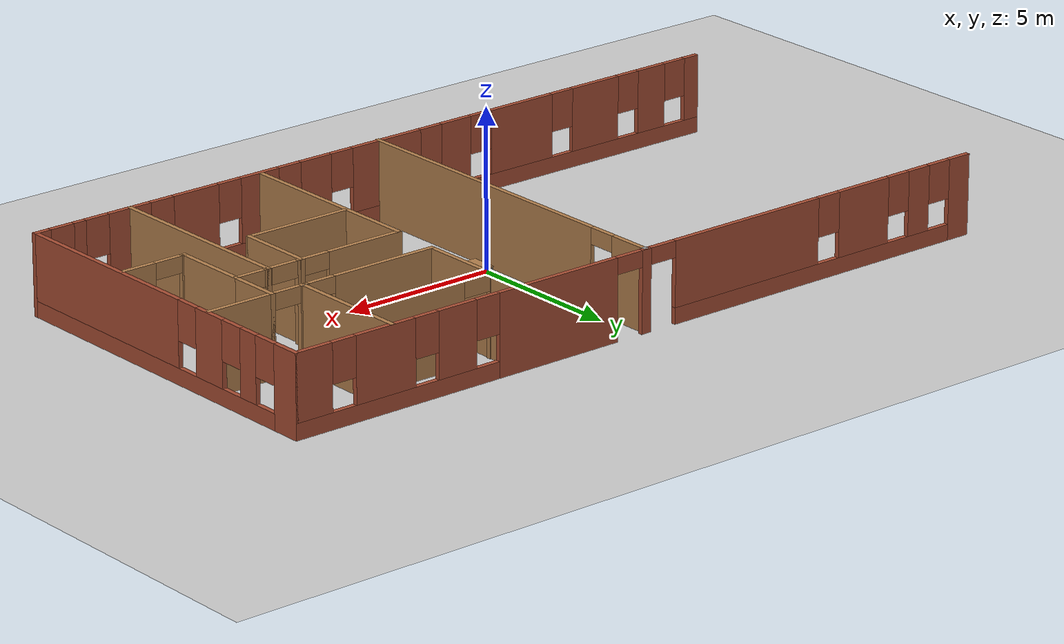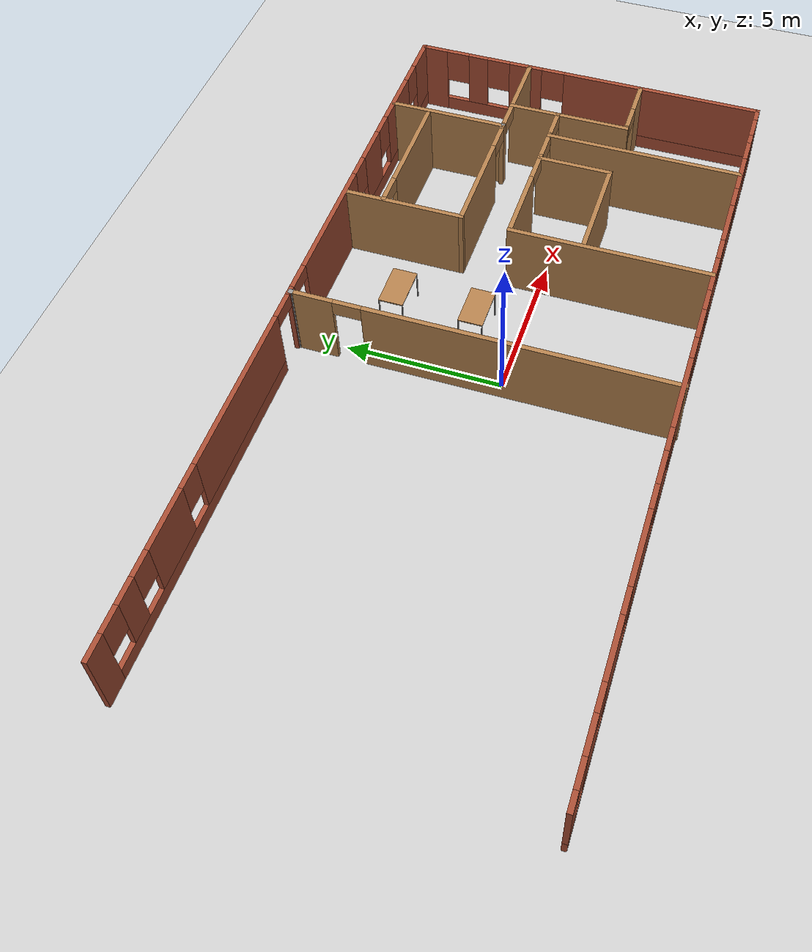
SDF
<sdf version="1.6">
 <world name="default">
  <model name="ground_plane">
   <static>1</static>
   <link name="link">
    <collision name="collision">
     <geometry><plane><normal>0 0 1</normal><size>100 100</size></plane></geometry>
     <surface><friction><ode><mu>100</mu><mu2>50</mu2></ode></friction></surface>
    </collision>
    <visual name="visual">
     <cast_shadows>0</cast_shadows>
     <geometry><plane><normal>0 0 1</normal><size>100 100</size></plane></geometry>
     <material>
      <script><uri>file://media/materials/scripts/gazebo.material</uri><name>Gazebo/Grey</name></script>
     </material>
    </visual>
   </link>
  </model>
  <model name="myhouse">
   <pose>-0.386417 0.578117 0 0 -0 0</pose>
   <link name="Wall_14">
    <collision name="Wall_14_Collision">
     <geometry><box><size>0.16 0.15 2.5</size></box></geometry>
     <pose>0 0 1.25 0 -0 0</pose>
    </collision>
    <visual name="Wall_14_Visual">
     <pose>0 0 1.25 0 -0 0</pose>
     <geometry><box><size>0.16 0.15 2.5</size></box></geometry>
     <material>
      <script><uri>file://media/materials/scripts/gazebo.material</uri><name>Gazebo/Grey</name></script>
      <ambient>1 1 1 1</ambient>
     </material>
    </visual>
    <pose>0.03462 5.87902 0 0 -0 0</pose>
   </link>
   <link name="Wall_15">
    <pose>0.03962 -0.045979 0 0 0 -1.5708</pose>
    <visual name="Wall_15_Visual_0">
     <pose>-5.3025 0 1.25 0 -0 0</pose>
     <geometry><box><size>1.39499 0.15 2.5</size></box></geometry>
     <material>
      <script><uri>file://media/materials/scripts/gazebo.material</uri><name>Gazebo/Wood</name></script>
      <ambient>1 1 1 1</ambient>
     </material>
    </visual>
    <collision name="Wall_15_Collision_0">
     <geometry><box><size>1.39499 0.15 2.5</size></box></geometry>
     <pose>-5.3025 0 1.25 0 -0 0</pose>
    </collision>
    <visual name="Wall_15_Visual_1">
     <pose>1.1475 0 1.25 0 -0 0</pose>
     <geometry><box><size>9.70501 0.15 2.5</size></box></geometry>
     <material>
      <script><uri>file://media/materials/scripts/gazebo.material</uri><name>Gazebo/Wood</name></script>
      <ambient>1 1 1 1</ambient>
     </material>
    </visual>
    <collision name="Wall_15_Collision_1">
     <geometry><box><size>9.70501 0.15 2.5</size></box></geometry>
     <pose>1.1475 0 1.25 0 -0 0</pose>
    </collision>
    <visual name="Wall_15_Visual_2">
     <pose>-4.15501 0 2.25 0 -0 0</pose>
     <geometry><box><size>0.9 0.15 0.5</size></box></geometry>
     <material>
      <script><uri>file://media/materials/scripts/gazebo.material</uri><name>Gazebo/Wood</name></script>
      <ambient>1 1 1 1</ambient>
     </material>
    </visual>
    <collision name="Wall_15_Collision_2">
     <geometry><box><size>0.9 0.15 0.5</size></box></geometry>
     <pose>-4.15501 0 2.25 0 -0 0</pose>
    </collision>
   </link>
   <link name="Wall_17">
    <collision name="Wall_17_Collision">
     <geometry><box><size>6.5 0.15 2.5</size></box></geometry>
     <pose>0 0 1.25 0 -0 0</pose>
    </collision>
    <visual name="Wall_17_Visual">
     <pose>0 0 1.25 0 -0 0</pose>
     <geometry><box><size>6.5 0.15 2.5</size></box></geometry>
     <material>
      <script><uri>file://media/materials/scripts/gazebo.material</uri><name>Gazebo/Wood</name></script>
      <ambient>1 1 1 1</ambient>
     </material>
    </visual>
    <pose>4.43449 -2.73253 0 0 -0 1.5708</pose>
   </link>
   <link name="Wall_18">
    <pose>6.73449 0.442468 0 0 -0 0</pose>
    <visual name="Wall_18_Visual_0">
     <pose>-1.08415 0 1.25 0 -0 0</pose>
     <geometry><box><size>2.58169 0.15 2.5</size></box></geometry>
     <material>
      <script><uri>file://media/materials/scripts/gazebo.material</uri><name>Gazebo/Wood</name></script>
      <ambient>1 1 1 1</ambient>
     </material>
    </visual>
    <collision name="Wall_18_Collision_0">
     <geometry><box><size>2.58169 0.15 2.5</size></box></geometry>
     <pose>-1.08415 0 1.25 0 -0 0</pose>
    </collision>
    <visual name="Wall_18_Visual_1">
     <pose>1.20982 0 1.25 0 -0 0</pose>
     <geometry><box><size>0.206246 0.15 2.5</size></box></geometry>
     <material>
      <script><uri>file://media/materials/scripts/gazebo.material</uri><name>Gazebo/Wood</name></script>
      <ambient>1 1 1 1</ambient>
     </material>
    </visual>
    <collision name="Wall_18_Collision_1">
     <geometry><box><size>0.206246 0.15 2.5</size></box></geometry>
     <pose>1.20982 0 1.25 0 -0 0</pose>
    </collision>
    <visual name="Wall_18_Visual_2">
     <pose>2.29397 0 1.25 0 -0 0</pose>
     <geometry><box><size>0.162059 0.15 2.5</size></box></geometry>
     <material>
      <script><uri>file://media/materials/scripts/gazebo.material</uri><name>Gazebo/Wood</name></script>
      <ambient>1 1 1 1</ambient>
     </material>
    </visual>
    <collision name="Wall_18_Collision_2">
     <geometry><box><size>0.162059 0.15 2.5</size></box></geometry>
     <pose>2.29397 0 1.25 0 -0 0</pose>
    </collision>
    <visual name="Wall_18_Visual_3">
     <pose>0.656695 0 2.25 0 -0 0</pose>
     <geometry><box><size>0.9 0.15 0.5</size></box></geometry>
     <material>
      <script><uri>file://media/materials/scripts/gazebo.material</uri><name>Gazebo/Wood</name></script>
      <ambient>1 1 1 1</ambient>
     </material>
    </visual>
    <collision name="Wall_18_Collision_3">
     <geometry><box><size>0.9 0.15 0.5</size></box></geometry>
     <pose>0.656695 0 2.25 0 -0 0</pose>
    </collision>
    <visual name="Wall_18_Visual_4">
     <pose>1.76294 0 2.25 0 -0 0</pose>
     <geometry><box><size>0.9 0.15 0.5</size></box></geometry>
     <material>
      <script><uri>file://media/materials/scripts/gazebo.material</uri><name>Gazebo/Wood</name></script>
      <ambient>1 1 1 1</ambient>
     </material>
    </visual>
    <collision name="Wall_18_Collision_4">
     <geometry><box><size>0.9 0.15 0.5</size></box></geometry>
     <pose>1.76294 0 2.25 0 -0 0</pose>
    </collision>
   </link>
   <link name="Wall_19">
    <collision name="Wall_19_Collision">
     <geometry><box><size>6.5 0.15 2.5</size></box></geometry>
     <pose>0 0 1.25 0 -0 0</pose>
    </collision>
    <visual name="Wall_19_Visual">
     <pose>0 0 1.25 0 -0 0</pose>
     <geometry><box><size>6.5 0.15 2.5</size></box></geometry>
     <material>
      <script><uri>file://media/materials/scripts/gazebo.material</uri><name>Gazebo/Wood</name></script>
      <ambient>1 1 1 1</ambient>
     </material>
    </visual>
    <pose>9.03449 -2.73253 0 0 0 -1.5708</pose>
   </link>
   <link name="Wall_21">
    <collision name="Wall_21_Collision">
     <geometry><box><size>2.5 0.15 2.5</size></box></geometry>
     <pose>0 0 1.25 0 -0 0</pose>
    </collision>
    <visual name="Wall_21_Visual">
     <pose>0 0 1.25 0 -0 0</pose>
     <geometry><box><size>2.5 0.15 2.5</size></box></geometry>
     <material>
      <script><uri>file://media/materials/scripts/gazebo.material</uri><name>Gazebo/Wood</name></script>
      <ambient>1 1 1 1</ambient>
     </material>
    </visual>
    <pose>7.87391 -0.726644 0 0 0 -1.5708</pose>
   </link>
   <link name="Wall_22">
    <collision name="Wall_22_Collision">
     <geometry><box><size>3.5 0.15 2.5</size></box></geometry>
     <pose>0 0 1.25 0 -0 0</pose>
    </collision>
    <visual name="Wall_22_Visual">
     <pose>0 0 1.25 0 -0 0</pose>
     <geometry><box><size>3.5 0.15 2.5</size></box></geometry>
     <material>
      <script><uri>file://media/materials/scripts/gazebo.material</uri><name>Gazebo/Wood</name></script>
      <ambient>1 1 1 1</ambient>
     </material>
    </visual>
    <pose>6.19891 -1.90164 0 0 -0 3.14159</pose>
   </link>
   <link name="Wall_24">
    <pose>9.58449 0.442468 0 0 -0 0</pose>
    <visual name="Wall_24_Visual_0">
     <pose>-0.51785 0 1.25 0 -0 0</pose>
     <geometry><box><size>0.214301 0.15 2.5</size></box></geometry>
     <material>
      <script><uri>file://media/materials/scripts/gazebo.material</uri><name>Gazebo/Wood</name></script>
      <ambient>1 1 1 1</ambient>
     </material>
    </visual>
    <collision name="Wall_24_Collision_0">
     <geometry><box><size>0.214301 0.15 2.5</size></box></geometry>
     <pose>-0.51785 0 1.25 0 -0 0</pose>
    </collision>
    <visual name="Wall_24_Visual_1">
     <pose>0.55715 0 1.25 0 -0 0</pose>
     <geometry><box><size>0.135699 0.15 2.5</size></box></geometry>
     <material>
      <script><uri>file://media/materials/scripts/gazebo.material</uri><name>Gazebo/Wood</name></script>
      <ambient>1 1 1 1</ambient>
     </material>
    </visual>
    <collision name="Wall_24_Collision_1">
     <geometry><box><size>0.135699 0.15 2.5</size></box></geometry>
     <pose>0.55715 0 1.25 0 -0 0</pose>
    </collision>
    <visual name="Wall_24_Visual_2">
     <pose>0.039301 0 2.25 0 -0 0</pose>
     <geometry><box><size>0.9 0.15 0.5</size></box></geometry>
     <material>
      <script><uri>file://media/materials/scripts/gazebo.material</uri><name>Gazebo/Wood</name></script>
      <ambient>1 1 1 1</ambient>
     </material>
    </visual>
    <collision name="Wall_24_Collision_2">
     <geometry><box><size>0.9 0.15 0.5</size></box></geometry>
     <pose>0.039301 0 2.25 0 -0 0</pose>
    </collision>
   </link>
   <link name="Wall_25">
    <collision name="Wall_25_Collision">
     <geometry><box><size>1.75 0.15 2.5</size></box></geometry>
     <pose>0 0 1.25 0 -0 0</pose>
    </collision>
    <visual name="Wall_25_Visual">
     <pose>0 0 1.25 0 -0 0</pose>
     <geometry><box><size>1.75 0.15 2.5</size></box></geometry>
     <material>
      <script><uri>file://media/materials/scripts/gazebo.material</uri><name>Gazebo/Wood</name></script>
      <ambient>1 1 1 1</ambient>
     </material>
    </visual>
    <pose>10.1345 1.24247 0 0 -0 1.5708</pose>
   </link>
   <link name="Wall_26">
    <collision name="Wall_26_Collision">
     <geometry><box><size>2.25 0.15 2.5</size></box></geometry>
     <pose>0 0 1.25 0 -0 0</pose>
    </collision>
    <visual name="Wall_26_Visual">
     <pose>0 0 1.25 0 -0 0</pose>
     <geometry><box><size>2.25 0.15 2.5</size></box></geometry>
     <material>
      <script><uri>file://media/materials/scripts/gazebo.material</uri><name>Gazebo/Wood</name></script>
      <ambient>1 1 1 1</ambient>
     </material>
    </visual>
    <pose>11.1845 2.04247 0 0 -0 0</pose>
   </link>
   <link name="Wall_28">
    <collision name="Wall_28_Collision">
     <geometry><box><size>2.5 0.15 2.5</size></box></geometry>
     <pose>0 0 1.25 0 -0 0</pose>
    </collision>
    <visual name="Wall_28_Visual">
     <pose>0 0 1.25 0 -0 0</pose>
     <geometry><box><size>2.5 0.15 2.5</size></box></geometry>
     <material>
      <script><uri>file://media/materials/scripts/gazebo.material</uri><name>Gazebo/Wood</name></script>
      <ambient>1 1 1 1</ambient>
     </material>
    </visual>
    <pose>10.1345 -0.732532 0 0 0 -1.5708</pose>
   </link>
   <link name="Wall_29">
    <pose>11.1845 -1.90753 0 0 -0 0</pose>
    <visual name="Wall_29_Visual_0">
     <pose>-1.02478 0 1.25 0 -0 0</pose>
     <geometry><box><size>0.200434 0.15 2.5</size></box></geometry>
     <material>
      <script><uri>file://media/materials/scripts/gazebo.material</uri><name>Gazebo/Wood</name></script>
      <ambient>1 1 1 1</ambient>
     </material>
    </visual>
    <collision name="Wall_29_Collision_0">
     <geometry><box><size>0.200434 0.15 2.5</size></box></geometry>
     <pose>-1.02478 0 1.25 0 -0 0</pose>
    </collision>
    <visual name="Wall_29_Visual_1">
     <pose>0.550217 0 1.25 0 -0 0</pose>
     <geometry><box><size>1.14957 0.15 2.5</size></box></geometry>
     <material>
      <script><uri>file://media/materials/scripts/gazebo.material</uri><name>Gazebo/Wood</name></script>
      <ambient>1 1 1 1</ambient>
     </material>
    </visual>
    <collision name="Wall_29_Collision_1">
     <geometry><box><size>1.14957 0.15 2.5</size></box></geometry>
     <pose>0.550217 0 1.25 0 -0 0</pose>
    </collision>
    <visual name="Wall_29_Visual_2">
     <pose>-0.474566 0 2.25 0 -0 0</pose>
     <geometry><box><size>0.9 0.15 0.5</size></box></geometry>
     <material>
      <script><uri>file://media/materials/scripts/gazebo.material</uri><name>Gazebo/Wood</name></script>
      <ambient>1 1 1 1</ambient>
     </material>
    </visual>
    <collision name="Wall_29_Collision_2">
     <geometry><box><size>0.9 0.15 0.5</size></box></geometry>
     <pose>-0.474566 0 2.25 0 -0 0</pose>
    </collision>
   </link>
   <link name="Wall_31">
    <pose>7.33449 2.04247 0 0 -0 3.14159</pose>
    <visual name="Wall_31_Visual_0">
     <pose>-2.80715 0 1.25 0 -0 0</pose>
     <geometry><box><size>0.135699 0.15 2.5</size></box></geometry>
     <material>
      <script><uri>file://media/materials/scripts/gazebo.material</uri><name>Gazebo/Wood</name></script>
      <ambient>1 1 1 1</ambient>
     </material>
    </visual>
    <collision name="Wall_31_Collision_0">
     <geometry><box><size>0.135699 0.15 2.5</size></box></geometry>
     <pose>-2.80715 0 1.25 0 -0 0</pose>
    </collision>
    <visual name="Wall_31_Visual_1">
     <pose>-1.69595 0 1.25 0 -0 0</pose>
     <geometry><box><size>0.286701 0.15 2.5</size></box></geometry>
     <material>
      <script><uri>file://media/materials/scripts/gazebo.material</uri><name>Gazebo/Wood</name></script>
      <ambient>1 1 1 1</ambient>
     </material>
    </visual>
    <collision name="Wall_31_Collision_1">
     <geometry><box><size>0.286701 0.15 2.5</size></box></geometry>
     <pose>-1.69595 0 1.25 0 -0 0</pose>
    </collision>
    <visual name="Wall_31_Visual_2">
     <pose>1.1112 0 1.25 0 -0 0</pose>
     <geometry><box><size>3.5276 0.15 2.5</size></box></geometry>
     <material>
      <script><uri>file://media/materials/scripts/gazebo.material</uri><name>Gazebo/Wood</name></script>
      <ambient>1 1 1 1</ambient>
     </material>
    </visual>
    <collision name="Wall_31_Collision_2">
     <geometry><box><size>3.5276 0.15 2.5</size></box></geometry>
     <pose>1.1112 0 1.25 0 -0 0</pose>
    </collision>
    <visual name="Wall_31_Visual_3">
     <pose>-2.2893 0 2.25 0 -0 0</pose>
     <geometry><box><size>0.9 0.15 0.5</size></box></geometry>
     <material>
      <script><uri>file://media/materials/scripts/gazebo.material</uri><name>Gazebo/Wood</name></script>
      <ambient>1 1 1 1</ambient>
     </material>
    </visual>
    <collision name="Wall_31_Collision_3">
     <geometry><box><size>0.9 0.15 0.5</size></box></geometry>
     <pose>-2.2893 0 2.25 0 -0 0</pose>
    </collision>
    <visual name="Wall_31_Visual_4">
     <pose>-1.1026 0 2.25 0 -0 0</pose>
     <geometry><box><size>0.9 0.15 0.5</size></box></geometry>
     <material>
      <script><uri>file://media/materials/scripts/gazebo.material</uri><name>Gazebo/Wood</name></script>
      <ambient>1 1 1 1</ambient>
     </material>
    </visual>
    <collision name="Wall_31_Collision_4">
     <geometry><box><size>0.9 0.15 0.5</size></box></geometry>
     <pose>-1.1026 0 2.25 0 -0 0</pose>
    </collision>
   </link>
   <link name="Wall_32">
    <collision name="Wall_32_Collision">
     <geometry><box><size>4 0.15 2.5</size></box></geometry>
     <pose>0 0 1.25 0 -0 0</pose>
    </collision>
    <visual name="Wall_32_Visual">
     <pose>0 0 1.25 0 -0 0</pose>
     <geometry><box><size>4 0.15 2.5</size></box></geometry>
     <material>
      <script><uri>file://media/materials/scripts/gazebo.material</uri><name>Gazebo/Wood</name></script>
      <ambient>1 1 1 1</ambient>
     </material>
    </visual>
    <pose>4.53449 3.96747 0 0 -0 1.5708</pose>
   </link>
   <link name="Wall_34">
    <collision name="Wall_34_Collision">
     <geometry><box><size>0.16 0.15 2.5</size></box></geometry>
     <pose>0 0 1.25 0 -0 0</pose>
    </collision>
    <visual name="Wall_34_Visual">
     <pose>0 0 1.25 0 -0 0</pose>
     <geometry><box><size>0.16 0.15 2.5</size></box></geometry>
     <material>
      <script><uri>file://media/materials/scripts/gazebo.material</uri><name>Gazebo/Grey</name></script>
      <ambient>1 1 1 1</ambient>
     </material>
    </visual>
    <pose>9.0455 2.05744 0 0 -0 0</pose>
   </link>
   <link name="Wall_35">
    <collision name="Wall_35_Collision">
     <geometry><box><size>4 0.15 2.5</size></box></geometry>
     <pose>0 0 1.25 0 -0 0</pose>
    </collision>
    <visual name="Wall_35_Visual">
     <pose>0 0 1.25 0 -0 0</pose>
     <geometry><box><size>4 0.15 2.5</size></box></geometry>
     <material>
      <script><uri>file://media/materials/scripts/gazebo.material</uri><name>Gazebo/Wood</name></script>
      <ambient>1 1 1 1</ambient>
     </material>
    </visual>
    <pose>9.0505 3.98244 0 0 -0 1.5708</pose>
   </link>
   <link name="Wall_37">
    <pose>6.71006 4.63198 0 0 -0 0</pose>
    <visual name="Wall_37_Visual_0">
     <pose>-2.15591 0 1.25 0 -0 0</pose>
     <geometry><box><size>0.18818 0.15 2.5</size></box></geometry>
     <material>
      <script><uri>file://media/materials/scripts/gazebo.material</uri><name>Gazebo/Wood</name></script>
      <ambient>1 1 1 1</ambient>
     </material>
    </visual>
    <collision name="Wall_37_Collision_0">
     <geometry><box><size>0.18818 0.15 2.5</size></box></geometry>
     <pose>-2.15591 0 1.25 0 -0 0</pose>
    </collision>
    <visual name="Wall_37_Visual_1">
     <pose>0.54409 0 1.25 0 -0 0</pose>
     <geometry><box><size>3.41182 0.15 2.5</size></box></geometry>
     <material>
      <script><uri>file://media/materials/scripts/gazebo.material</uri><name>Gazebo/Wood</name></script>
      <ambient>1 1 1 1</ambient>
     </material>
    </visual>
    <collision name="Wall_37_Collision_1">
     <geometry><box><size>3.41182 0.15 2.5</size></box></geometry>
     <pose>0.54409 0 1.25 0 -0 0</pose>
    </collision>
    <visual name="Wall_37_Visual_2">
     <pose>-1.61182 0 2.25 0 -0 0</pose>
     <geometry><box><size>0.9 0.15 0.5</size></box></geometry>
     <material>
      <script><uri>file://media/materials/scripts/gazebo.material</uri><name>Gazebo/Wood</name></script>
      <ambient>1 1 1 1</ambient>
     </material>
    </visual>
    <collision name="Wall_37_Collision_2">
     <geometry><box><size>0.9 0.15 0.5</size></box></geometry>
     <pose>-1.61182 0 2.25 0 -0 0</pose>
    </collision>
   </link>
   <link name="Wall_7">
    <pose>0 5.91925 0 0 -0 0</pose>
    <visual name="Wall_7_Visual_0">
     <pose>-11.9743 0 1.25 0 -0 0</pose>
     <geometry><box><size>0.80136 0.15 2.5</size></box></geometry>
     <material>
      <script><uri>file://media/materials/scripts/gazebo.material</uri><name>Gazebo/Bricks</name></script>
      <ambient>0.435294 0.796078 0.67451 1</ambient>
     </material>
    </visual>
    <collision name="Wall_7_Collision_0">
     <geometry><box><size>0.80136 0.15 2.5</size></box></geometry>
     <pose>-11.9743 0 1.25 0 -0 0</pose>
    </collision>
    <visual name="Wall_7_Visual_1">
     <pose>0.05979 0 1.25 0 -0 0</pose>
     <geometry><box><size>0.326928 0.15 2.5</size></box></geometry>
     <material>
      <script><uri>file://media/materials/scripts/gazebo.material</uri><name>Gazebo/Bricks</name></script>
      <ambient>0.435294 0.796078 0.67451 1</ambient>
     </material>
    </visual>
    <collision name="Wall_7_Collision_1">
     <geometry><box><size>0.326928 0.15 2.5</size></box></geometry>
     <pose>0.05979 0 1.25 0 -0 0</pose>
    </collision>
    <visual name="Wall_7_Visual_2">
     <pose>3.24262 0 1.25 0 -0 0</pose>
     <geometry><box><size>4.23873 0.15 2.5</size></box></geometry>
     <material>
      <script><uri>file://media/materials/scripts/gazebo.material</uri><name>Gazebo/Bricks</name></script>
      <ambient>0.435294 0.796078 0.67451 1</ambient>
     </material>
    </visual>
    <collision name="Wall_7_Collision_2">
     <geometry><box><size>4.23873 0.15 2.5</size></box></geometry>
     <pose>3.24262 0 1.25 0 -0 0</pose>
    </collision>
    <visual name="Wall_7_Visual_3">
     <pose>-6.28866 0 0.25 0 -0 0</pose>
     <geometry><box><size>10.57 0.15 0.5</size></box></geometry>
     <material>
      <script><uri>file://media/materials/scripts/gazebo.material</uri><name>Gazebo/Bricks</name></script>
      <ambient>0.435294 0.796078 0.67451 1</ambient>
     </material>
    </visual>
    <collision name="Wall_7_Collision_3">
     <geometry><box><size>10.57 0.15 0.5</size></box></geometry>
     <pose>-6.28866 0 0.25 0 -0 0</pose>
    </collision>
    <visual name="Wall_7_Visual_4">
     <pose>8.86849 0 0.25 0 -0 0</pose>
     <geometry><box><size>7.01301 0.15 0.5</size></box></geometry>
     <material>
      <script><uri>file://media/materials/scripts/gazebo.material</uri><name>Gazebo/Bricks</name></script>
      <ambient>0.435294 0.796078 0.67451 1</ambient>
     </material>
    </visual>
    <collision name="Wall_7_Collision_4">
     <geometry><box><size>7.01301 0.15 0.5</size></box></geometry>
     <pose>8.86849 0 0.25 0 -0 0</pose>
    </collision>
    <visual name="Wall_7_Visual_5">
     <pose>-10.3691 0 1.5 0 -0 0</pose>
     <geometry><box><size>0.809086 0.15 2</size></box></geometry>
     <material>
      <script><uri>file://media/materials/scripts/gazebo.material</uri><name>Gazebo/Bricks</name></script>
      <ambient>0.435294 0.796078 0.67451 1</ambient>
     </material>
    </visual>
    <collision name="Wall_7_Collision_5">
     <geometry><box><size>0.809086 0.15 2</size></box></geometry>
     <pose>-10.3691 0 1.5 0 -0 0</pose>
    </collision>
    <visual name="Wall_7_Visual_6">
     <pose>-8.19683 0 1.5 0 -0 0</pose>
     <geometry><box><size>1.93545 0.15 2</size></box></geometry>
     <material>
      <script><uri>file://media/materials/scripts/gazebo.material</uri><name>Gazebo/Bricks</name></script>
      <ambient>0.435294 0.796078 0.67451 1</ambient>
     </material>
    </visual>
    <collision name="Wall_7_Collision_6">
     <geometry><box><size>1.93545 0.15 2</size></box></geometry>
     <pose>-8.19683 0 1.5 0 -0 0</pose>
    </collision>
    <visual name="Wall_7_Visual_7">
     <pose>-3.71639 0 1.5 0 -0 0</pose>
     <geometry><box><size>5.42543 0.15 2</size></box></geometry>
     <material>
      <script><uri>file://media/materials/scripts/gazebo.material</uri><name>Gazebo/Bricks</name></script>
      <ambient>0.435294 0.796078 0.67451 1</ambient>
     </material>
    </visual>
    <collision name="Wall_7_Collision_7">
     <geometry><box><size>5.42543 0.15 2</size></box></geometry>
     <pose>-3.71639 0 1.5 0 -0 0</pose>
    </collision>
    <visual name="Wall_7_Visual_8">
     <pose>-3.71639 0 1.5 0 -0 0</pose>
     <geometry><box><size>5.42543 0.15 2</size></box></geometry>
     <material>
      <script><uri>file://media/materials/scripts/gazebo.material</uri><name>Gazebo/Bricks</name></script>
      <ambient>0.435294 0.796078 0.67451 1</ambient>
     </material>
    </visual>
    <collision name="Wall_7_Collision_8">
     <geometry><box><size>5.42543 0.15 2</size></box></geometry>
     <pose>-3.71639 0 1.5 0 -0 0</pose>
    </collision>
    <visual name="Wall_7_Visual_9">
     <pose>6.82801 0 1.5 0 -0 0</pose>
     <geometry><box><size>1.33204 0.15 2</size></box></geometry>
     <material>
      <script><uri>file://media/materials/scripts/gazebo.material</uri><name>Gazebo/Bricks</name></script>
      <ambient>0.435294 0.796078 0.67451 1</ambient>
     </material>
    </visual>
    <collision name="Wall_7_Collision_9">
     <geometry><box><size>1.33204 0.15 2</size></box></geometry>
     <pose>6.82801 0 1.5 0 -0 0</pose>
    </collision>
    <visual name="Wall_7_Visual_10">
     <pose>9.31203 0 1.5 0 -0 0</pose>
     <geometry><box><size>2.03601 0.15 2</size></box></geometry>
     <material>
      <script><uri>file://media/materials/scripts/gazebo.material</uri><name>Gazebo/Bricks</name></script>
      <ambient>0.435294 0.796078 0.67451 1</ambient>
     </material>
    </visual>
    <collision name="Wall_7_Collision_10">
     <geometry><box><size>2.03601 0.15 2</size></box></geometry>
     <pose>9.31203 0 1.5 0 -0 0</pose>
    </collision>
    <visual name="Wall_7_Visual_11">
     <pose>11.7525 0 1.5 0 -0 0</pose>
     <geometry><box><size>1.24496 0.15 2</size></box></geometry>
     <material>
      <script><uri>file://media/materials/scripts/gazebo.material</uri><name>Gazebo/Bricks</name></script>
      <ambient>0.435294 0.796078 0.67451 1</ambient>
     </material>
    </visual>
    <collision name="Wall_7_Collision_11">
     <geometry><box><size>1.24496 0.15 2</size></box></geometry>
     <pose>11.7525 0 1.5 0 -0 0</pose>
    </collision>
    <visual name="Wall_7_Visual_12">
     <pose>-11.1736 0 1.9 0 -0 0</pose>
     <geometry><box><size>0.8 0.15 1.2</size></box></geometry>
     <material>
      <script><uri>file://media/materials/scripts/gazebo.material</uri><name>Gazebo/Bricks</name></script>
      <ambient>0.435294 0.796078 0.67451 1</ambient>
     </material>
    </visual>
    <collision name="Wall_7_Collision_12">
     <geometry><box><size>0.8 0.15 1.2</size></box></geometry>
     <pose>-11.1736 0 1.9 0 -0 0</pose>
    </collision>
    <visual name="Wall_7_Visual_13">
     <pose>5.76199 0 1.9 0 -0 0</pose>
     <geometry><box><size>0.8 0.15 1.2</size></box></geometry>
     <material>
      <script><uri>file://media/materials/scripts/gazebo.material</uri><name>Gazebo/Bricks</name></script>
      <ambient>0.435294 0.796078 0.67451 1</ambient>
     </material>
    </visual>
    <collision name="Wall_7_Collision_13">
     <geometry><box><size>0.8 0.15 1.2</size></box></geometry>
     <pose>5.76199 0 1.9 0 -0 0</pose>
    </collision>
    <visual name="Wall_7_Visual_14">
     <pose>-9.56455 0 1.9 0 -0 0</pose>
     <geometry><box><size>0.8 0.15 1.2</size></box></geometry>
     <material>
      <script><uri>file://media/materials/scripts/gazebo.material</uri><name>Gazebo/Bricks</name></script>
      <ambient>0.435294 0.796078 0.67451 1</ambient>
     </material>
    </visual>
    <collision name="Wall_7_Collision_14">
     <geometry><box><size>0.8 0.15 1.2</size></box></geometry>
     <pose>-9.56455 0 1.9 0 -0 0</pose>
    </collision>
    <visual name="Wall_7_Visual_15">
     <pose>-6.82911 0 1.9 0 -0 0</pose>
     <geometry><box><size>0.8 0.15 1.2</size></box></geometry>
     <material>
      <script><uri>file://media/materials/scripts/gazebo.material</uri><name>Gazebo/Bricks</name></script>
      <ambient>0.435294 0.796078 0.67451 1</ambient>
     </material>
    </visual>
    <collision name="Wall_7_Collision_15">
     <geometry><box><size>0.8 0.15 1.2</size></box></geometry>
     <pose>-6.82911 0 1.9 0 -0 0</pose>
    </collision>
    <visual name="Wall_7_Visual_16">
     <pose>7.89403 0 1.9 0 -0 0</pose>
     <geometry><box><size>0.8 0.15 1.2</size></box></geometry>
     <material>
      <script><uri>file://media/materials/scripts/gazebo.material</uri><name>Gazebo/Bricks</name></script>
      <ambient>0.435294 0.796078 0.67451 1</ambient>
     </material>
    </visual>
    <collision name="Wall_7_Collision_16">
     <geometry><box><size>0.8 0.15 1.2</size></box></geometry>
     <pose>7.89403 0 1.9 0 -0 0</pose>
    </collision>
    <visual name="Wall_7_Visual_17">
     <pose>10.73 0 1.9 0 -0 0</pose>
     <geometry><box><size>0.8 0.15 1.2</size></box></geometry>
     <material>
      <script><uri>file://media/materials/scripts/gazebo.material</uri><name>Gazebo/Bricks</name></script>
      <ambient>0.435294 0.796078 0.67451 1</ambient>
     </material>
    </visual>
    <collision name="Wall_7_Collision_17">
     <geometry><box><size>0.8 0.15 1.2</size></box></geometry>
     <pose>10.73 0 1.9 0 -0 0</pose>
    </collision>
    <visual name="Wall_7_Visual_18">
     <pose>0.673254 0 2.25 0 -0 0</pose>
     <geometry><box><size>0.9 0.15 0.5</size></box></geometry>
     <material>
      <script><uri>file://media/materials/scripts/gazebo.material</uri><name>Gazebo/Bricks</name></script>
      <ambient>0.435294 0.796078 0.67451 1</ambient>
     </material>
    </visual>
    <collision name="Wall_7_Collision_18">
     <geometry><box><size>0.9 0.15 0.5</size></box></geometry>
     <pose>0.673254 0 2.25 0 -0 0</pose>
    </collision>
    <visual name="Wall_7_Visual_19">
     <pose>-0.553674 0 2.25 0 -0 0</pose>
     <geometry><box><size>0.9 0.15 0.5</size></box></geometry>
     <material>
      <script><uri>file://media/materials/scripts/gazebo.material</uri><name>Gazebo/Bricks</name></script>
      <ambient>0.435294 0.796078 0.67451 1</ambient>
     </material>
    </visual>
    <collision name="Wall_7_Collision_19">
     <geometry><box><size>0.9 0.15 0.5</size></box></geometry>
     <pose>-0.553674 0 2.25 0 -0 0</pose>
    </collision>
    <visual name="Wall_7_Visual_20">
     <pose>-0.553674 0 2.25 0 -0 0</pose>
     <geometry><box><size>0.9 0.15 0.5</size></box></geometry>
     <material>
      <script><uri>file://media/materials/scripts/gazebo.material</uri><name>Gazebo/Bricks</name></script>
      <ambient>0.435294 0.796078 0.67451 1</ambient>
     </material>
    </visual>
    <collision name="Wall_7_Collision_20">
     <geometry><box><size>0.9 0.15 0.5</size></box></geometry>
     <pose>-0.553674 0 2.25 0 -0 0</pose>
    </collision>
   </link>
   <link name="Wall_8">
    <pose>12.3 -0.005752 0 0 0 -1.5708</pose>
    <visual name="Wall_8_Visual_0">
     <pose>-5.52892 0 1.25 0 -0 0</pose>
     <geometry><box><size>0.942155 0.15 2.5</size></box></geometry>
     <material>
      <script><uri>file://media/materials/scripts/gazebo.material</uri><name>Gazebo/Bricks</name></script>
      <ambient>1 1 1 1</ambient>
     </material>
    </visual>
    <collision name="Wall_8_Collision_0">
     <geometry><box><size>0.942155 0.15 2.5</size></box></geometry>
     <pose>-5.52892 0 1.25 0 -0 0</pose>
    </collision>
    <visual name="Wall_8_Visual_1">
     <pose>0.471077 0 0.25 0 -0 0</pose>
     <geometry><box><size>11.0578 0.15 0.5</size></box></geometry>
     <material>
      <script><uri>file://media/materials/scripts/gazebo.material</uri><name>Gazebo/Bricks</name></script>
      <ambient>1 1 1 1</ambient>
     </material>
    </visual>
    <collision name="Wall_8_Collision_1">
     <geometry><box><size>11.0578 0.15 0.5</size></box></geometry>
     <pose>0.471077 0 0.25 0 -0 0</pose>
    </collision>
    <visual name="Wall_8_Visual_2">
     <pose>-3.91364 0 1.5 0 -0 0</pose>
     <geometry><box><size>0.688405 0.15 2</size></box></geometry>
     <material>
      <script><uri>file://media/materials/scripts/gazebo.material</uri><name>Gazebo/Bricks</name></script>
      <ambient>1 1 1 1</ambient>
     </material>
    </visual>
    <collision name="Wall_8_Collision_2">
     <geometry><box><size>0.688405 0.15 2</size></box></geometry>
     <pose>-3.91364 0 1.5 0 -0 0</pose>
    </collision>
    <visual name="Wall_8_Visual_3">
     <pose>-2.18388 0 1.5 0 -0 0</pose>
     <geometry><box><size>1.17113 0.15 2</size></box></geometry>
     <material>
      <script><uri>file://media/materials/scripts/gazebo.material</uri><name>Gazebo/Bricks</name></script>
      <ambient>1 1 1 1</ambient>
     </material>
    </visual>
    <collision name="Wall_8_Collision_3">
     <geometry><box><size>1.17113 0.15 2</size></box></geometry>
     <pose>-2.18388 0 1.5 0 -0 0</pose>
    </collision>
    <visual name="Wall_8_Visual_4">
     <pose>2.60085 0 1.5 0 -0 0</pose>
     <geometry><box><size>6.79831 0.15 2</size></box></geometry>
     <material>
      <script><uri>file://media/materials/scripts/gazebo.material</uri><name>Gazebo/Bricks</name></script>
      <ambient>1 1 1 1</ambient>
     </material>
    </visual>
    <collision name="Wall_8_Collision_4">
     <geometry><box><size>6.79831 0.15 2</size></box></geometry>
     <pose>2.60085 0 1.5 0 -0 0</pose>
    </collision>
    <visual name="Wall_8_Visual_5">
     <pose>-4.65785 0 1.9 0 -0 0</pose>
     <geometry><box><size>0.8 0.15 1.2</size></box></geometry>
     <material>
      <script><uri>file://media/materials/scripts/gazebo.material</uri><name>Gazebo/Bricks</name></script>
      <ambient>1 1 1 1</ambient>
     </material>
    </visual>
    <collision name="Wall_8_Collision_5">
     <geometry><box><size>0.8 0.15 1.2</size></box></geometry>
     <pose>-4.65785 0 1.9 0 -0 0</pose>
    </collision>
    <visual name="Wall_8_Visual_6">
     <pose>-3.16944 0 1.9 0 -0 0</pose>
     <geometry><box><size>0.8 0.15 1.2</size></box></geometry>
     <material>
      <script><uri>file://media/materials/scripts/gazebo.material</uri><name>Gazebo/Bricks</name></script>
      <ambient>1 1 1 1</ambient>
     </material>
    </visual>
    <collision name="Wall_8_Collision_6">
     <geometry><box><size>0.8 0.15 1.2</size></box></geometry>
     <pose>-3.16944 0 1.9 0 -0 0</pose>
    </collision>
    <visual name="Wall_8_Visual_7">
     <pose>-1.19831 0 1.9 0 -0 0</pose>
     <geometry><box><size>0.8 0.15 1.2</size></box></geometry>
     <material>
      <script><uri>file://media/materials/scripts/gazebo.material</uri><name>Gazebo/Bricks</name></script>
      <ambient>1 1 1 1</ambient>
     </material>
    </visual>
    <collision name="Wall_8_Collision_7">
     <geometry><box><size>0.8 0.15 1.2</size></box></geometry>
     <pose>-1.19831 0 1.9 0 -0 0</pose>
    </collision>
   </link>
   <link name="Wall_9">
    <pose>0 -5.93075 0 0 -0 3.14159</pose>
    <visual name="Wall_9_Visual_0">
     <pose>-12.1045 0 1.25 0 -0 0</pose>
     <geometry><box><size>0.540985 0.15 2.5</size></box></geometry>
     <material>
      <script><uri>file://media/materials/scripts/gazebo.material</uri><name>Gazebo/Bricks</name></script>
      <ambient>1 1 1 1</ambient>
     </material>
    </visual>
    <collision name="Wall_9_Collision_0">
     <geometry><box><size>0.540985 0.15 2.5</size></box></geometry>
     <pose>-12.1045 0 1.25 0 -0 0</pose>
    </collision>
    <visual name="Wall_9_Visual_1">
     <pose>0.270493 0 0.25 0 -0 0</pose>
     <geometry><box><size>24.209 0.15 0.5</size></box></geometry>
     <material>
      <script><uri>file://media/materials/scripts/gazebo.material</uri><name>Gazebo/Bricks</name></script>
      <ambient>1 1 1 1</ambient>
     </material>
    </visual>
    <collision name="Wall_9_Collision_1">
     <geometry><box><size>24.209 0.15 0.5</size></box></geometry>
     <pose>0.270493 0 0.25 0 -0 0</pose>
    </collision>
    <visual name="Wall_9_Visual_2">
     <pose>-10.8306 0 1.5 0 -0 0</pose>
     <geometry><box><size>0.406814 0.15 2</size></box></geometry>
     <material>
      <script><uri>file://media/materials/scripts/gazebo.material</uri><name>Gazebo/Bricks</name></script>
      <ambient>1 1 1 1</ambient>
     </material>
    </visual>
    <collision name="Wall_9_Collision_2">
     <geometry><box><size>0.406814 0.15 2</size></box></geometry>
     <pose>-10.8306 0 1.5 0 -0 0</pose>
    </collision>
    <visual name="Wall_9_Visual_3">
     <pose>-9.09078 0 1.5 0 -0 0</pose>
     <geometry><box><size>1.47283 0.15 2</size></box></geometry>
     <material>
      <script><uri>file://media/materials/scripts/gazebo.material</uri><name>Gazebo/Bricks</name></script>
      <ambient>1 1 1 1</ambient>
     </material>
    </visual>
    <collision name="Wall_9_Collision_3">
     <geometry><box><size>1.47283 0.15 2</size></box></geometry>
     <pose>-9.09078 0 1.5 0 -0 0</pose>
    </collision>
    <visual name="Wall_9_Visual_4">
     <pose>-6.75761 0 1.5 0 -0 0</pose>
     <geometry><box><size>1.59352 0.15 2</size></box></geometry>
     <material>
      <script><uri>file://media/materials/scripts/gazebo.material</uri><name>Gazebo/Bricks</name></script>
      <ambient>1 1 1 1</ambient>
     </material>
    </visual>
    <collision name="Wall_9_Collision_4">
     <geometry><box><size>1.59352 0.15 2</size></box></geometry>
     <pose>-6.75761 0 1.5 0 -0 0</pose>
    </collision>
    <visual name="Wall_9_Visual_5">
     <pose>-4.47472 0 1.5 0 -0 0</pose>
     <geometry><box><size>1.37227 0.15 2</size></box></geometry>
     <material>
      <script><uri>file://media/materials/scripts/gazebo.material</uri><name>Gazebo/Bricks</name></script>
      <ambient>1 1 1 1</ambient>
     </material>
    </visual>
    <collision name="Wall_9_Collision_5">
     <geometry><box><size>1.37227 0.15 2</size></box></geometry>
     <pose>-4.47472 0 1.5 0 -0 0</pose>
    </collision>
    <visual name="Wall_9_Visual_6">
     <pose>-2.43319 0 1.5 0 -0 0</pose>
     <geometry><box><size>1.11079 0.15 2</size></box></geometry>
     <material>
      <script><uri>file://media/materials/scripts/gazebo.material</uri><name>Gazebo/Bricks</name></script>
      <ambient>1 1 1 1</ambient>
     </material>
    </visual>
    <collision name="Wall_9_Collision_6">
     <geometry><box><size>1.11079 0.15 2</size></box></geometry>
     <pose>-2.43319 0 1.5 0 -0 0</pose>
    </collision>
    <visual name="Wall_9_Visual_7">
     <pose>0.19163 0 1.5 0 -0 0</pose>
     <geometry><box><size>2.53885 0.15 2</size></box></geometry>
     <material>
      <script><uri>file://media/materials/scripts/gazebo.material</uri><name>Gazebo/Bricks</name></script>
      <ambient>1 1 1 1</ambient>
     </material>
    </visual>
    <collision name="Wall_9_Collision_7">
     <geometry><box><size>2.53885 0.15 2</size></box></geometry>
     <pose>0.19163 0 1.5 0 -0 0</pose>
    </collision>
    <visual name="Wall_9_Visual_8">
     <pose>2.81645 0 1.5 0 -0 0</pose>
     <geometry><box><size>1.11079 0.15 2</size></box></geometry>
     <material>
      <script><uri>file://media/materials/scripts/gazebo.material</uri><name>Gazebo/Bricks</name></script>
      <ambient>1 1 1 1</ambient>
     </material>
    </visual>
    <collision name="Wall_9_Collision_8">
     <geometry><box><size>1.11079 0.15 2</size></box></geometry>
     <pose>2.81645 0 1.5 0 -0 0</pose>
    </collision>
    <visual name="Wall_9_Visual_9">
     <pose>5.35076 0 1.5 0 -0 0</pose>
     <geometry><box><size>2.35783 0.15 2</size></box></geometry>
     <material>
      <script><uri>file://media/materials/scripts/gazebo.material</uri><name>Gazebo/Bricks</name></script>
      <ambient>1 1 1 1</ambient>
     </material>
    </visual>
    <collision name="Wall_9_Collision_9">
     <geometry><box><size>2.35783 0.15 2</size></box></geometry>
     <pose>5.35076 0 1.5 0 -0 0</pose>
    </collision>
    <visual name="Wall_9_Visual_10">
     <pose>8.23706 0 1.5 0 -0 0</pose>
     <geometry><box><size>1.81476 0.15 2</size></box></geometry>
     <material>
      <script><uri>file://media/materials/scripts/gazebo.material</uri><name>Gazebo/Bricks</name></script>
      <ambient>1 1 1 1</ambient>
     </material>
    </visual>
    <collision name="Wall_9_Collision_10">
     <geometry><box><size>1.81476 0.15 2</size></box></geometry>
     <pose>8.23706 0 1.5 0 -0 0</pose>
    </collision>
    <visual name="Wall_9_Visual_11">
     <pose>10.4797 0 1.5 0 -0 0</pose>
     <geometry><box><size>1.07056 0.15 2</size></box></geometry>
     <material>
      <script><uri>file://media/materials/scripts/gazebo.material</uri><name>Gazebo/Bricks</name></script>
      <ambient>1 1 1 1</ambient>
     </material>
    </visual>
    <collision name="Wall_9_Collision_11">
     <geometry><box><size>1.07056 0.15 2</size></box></geometry>
     <pose>10.4797 0 1.5 0 -0 0</pose>
    </collision>
    <visual name="Wall_9_Visual_12">
     <pose>12.095 0 1.5 0 -0 0</pose>
     <geometry><box><size>0.559998 0.15 2</size></box></geometry>
     <material>
      <script><uri>file://media/materials/scripts/gazebo.material</uri><name>Gazebo/Bricks</name></script>
      <ambient>1 1 1 1</ambient>
     </material>
    </visual>
    <collision name="Wall_9_Collision_12">
     <geometry><box><size>0.559998 0.15 2</size></box></geometry>
     <pose>12.095 0 1.5 0 -0 0</pose>
    </collision>
    <visual name="Wall_9_Visual_13">
     <pose>-11.434 0 1.9 0 -0 0</pose>
     <geometry><box><size>0.8 0.15 1.2</size></box></geometry>
     <material>
      <script><uri>file://media/materials/scripts/gazebo.material</uri><name>Gazebo/Bricks</name></script>
      <ambient>1 1 1 1</ambient>
     </material>
    </visual>
    <collision name="Wall_9_Collision_13">
     <geometry><box><size>0.8 0.15 1.2</size></box></geometry>
     <pose>-11.434 0 1.9 0 -0 0</pose>
    </collision>
    <visual name="Wall_9_Visual_14">
     <pose>-10.2272 0 1.9 0 -0 0</pose>
     <geometry><box><size>0.8 0.15 1.2</size></box></geometry>
     <material>
      <script><uri>file://media/materials/scripts/gazebo.material</uri><name>Gazebo/Bricks</name></script>
      <ambient>1 1 1 1</ambient>
     </material>
    </visual>
    <collision name="Wall_9_Collision_14">
     <geometry><box><size>0.8 0.15 1.2</size></box></geometry>
     <pose>-10.2272 0 1.9 0 -0 0</pose>
    </collision>
    <visual name="Wall_9_Visual_15">
     <pose>-7.95437 0 1.9 0 -0 0</pose>
     <geometry><box><size>0.8 0.15 1.2</size></box></geometry>
     <material>
      <script><uri>file://media/materials/scripts/gazebo.material</uri><name>Gazebo/Bricks</name></script>
      <ambient>1 1 1 1</ambient>
     </material>
    </visual>
    <collision name="Wall_9_Collision_15">
     <geometry><box><size>0.8 0.15 1.2</size></box></geometry>
     <pose>-7.95437 0 1.9 0 -0 0</pose>
    </collision>
    <visual name="Wall_9_Visual_16">
     <pose>-5.56085 0 1.9 0 -0 0</pose>
     <geometry><box><size>0.8 0.15 1.2</size></box></geometry>
     <material>
      <script><uri>file://media/materials/scripts/gazebo.material</uri><name>Gazebo/Bricks</name></script>
      <ambient>1 1 1 1</ambient>
     </material>
    </visual>
    <collision name="Wall_9_Collision_16">
     <geometry><box><size>0.8 0.15 1.2</size></box></geometry>
     <pose>-5.56085 0 1.9 0 -0 0</pose>
    </collision>
    <visual name="Wall_9_Visual_17">
     <pose>-3.38859 0 1.9 0 -0 0</pose>
     <geometry><box><size>0.8 0.15 1.2</size></box></geometry>
     <material>
      <script><uri>file://media/materials/scripts/gazebo.material</uri><name>Gazebo/Bricks</name></script>
      <ambient>1 1 1 1</ambient>
     </material>
    </visual>
    <collision name="Wall_9_Collision_17">
     <geometry><box><size>0.8 0.15 1.2</size></box></geometry>
     <pose>-3.38859 0 1.9 0 -0 0</pose>
    </collision>
    <visual name="Wall_9_Visual_18">
     <pose>-1.4778 0 1.9 0 -0 0</pose>
     <geometry><box><size>0.8 0.15 1.2</size></box></geometry>
     <material>
      <script><uri>file://media/materials/scripts/gazebo.material</uri><name>Gazebo/Bricks</name></script>
      <ambient>1 1 1 1</ambient>
     </material>
    </visual>
    <collision name="Wall_9_Collision_18">
     <geometry><box><size>0.8 0.15 1.2</size></box></geometry>
     <pose>-1.4778 0 1.9 0 -0 0</pose>
    </collision>
    <visual name="Wall_9_Visual_19">
     <pose>1.86106 0 1.9 0 -0 0</pose>
     <geometry><box><size>0.8 0.15 1.2</size></box></geometry>
     <material>
      <script><uri>file://media/materials/scripts/gazebo.material</uri><name>Gazebo/Bricks</name></script>
      <ambient>1 1 1 1</ambient>
     </material>
    </visual>
    <collision name="Wall_9_Collision_19">
     <geometry><box><size>0.8 0.15 1.2</size></box></geometry>
     <pose>1.86106 0 1.9 0 -0 0</pose>
    </collision>
    <visual name="Wall_9_Visual_20">
     <pose>3.77184 0 1.9 0 -0 0</pose>
     <geometry><box><size>0.8 0.15 1.2</size></box></geometry>
     <material>
      <script><uri>file://media/materials/scripts/gazebo.material</uri><name>Gazebo/Bricks</name></script>
      <ambient>1 1 1 1</ambient>
     </material>
    </visual>
    <collision name="Wall_9_Collision_20">
     <geometry><box><size>0.8 0.15 1.2</size></box></geometry>
     <pose>3.77184 0 1.9 0 -0 0</pose>
    </collision>
    <visual name="Wall_9_Visual_21">
     <pose>6.92968 0 1.9 0 -0 0</pose>
     <geometry><box><size>0.8 0.15 1.2</size></box></geometry>
     <material>
      <script><uri>file://media/materials/scripts/gazebo.material</uri><name>Gazebo/Bricks</name></script>
      <ambient>1 1 1 1</ambient>
     </material>
    </visual>
    <collision name="Wall_9_Collision_21">
     <geometry><box><size>0.8 0.15 1.2</size></box></geometry>
     <pose>6.92968 0 1.9 0 -0 0</pose>
    </collision>
    <visual name="Wall_9_Visual_22">
     <pose>9.54444 0 1.9 0 -0 0</pose>
     <geometry><box><size>0.8 0.15 1.2</size></box></geometry>
     <material>
      <script><uri>file://media/materials/scripts/gazebo.material</uri><name>Gazebo/Bricks</name></script>
      <ambient>1 1 1 1</ambient>
     </material>
    </visual>
    <collision name="Wall_9_Collision_22">
     <geometry><box><size>0.8 0.15 1.2</size></box></geometry>
     <pose>9.54444 0 1.9 0 -0 0</pose>
    </collision>
    <visual name="Wall_9_Visual_23">
     <pose>11.415 0 1.9 0 -0 0</pose>
     <geometry><box><size>0.8 0.15 1.2</size></box></geometry>
     <material>
      <script><uri>file://media/materials/scripts/gazebo.material</uri><name>Gazebo/Bricks</name></script>
      <ambient>1 1 1 1</ambient>
     </material>
    </visual>
    <collision name="Wall_9_Collision_23">
     <geometry><box><size>0.8 0.15 1.2</size></box></geometry>
     <pose>11.415 0 1.9 0 -0 0</pose>
    </collision>
   </link>
   <static>1</static>
  </model>
  <model name="table">
   <static>0</static>
   <link name="link">
    <collision name="surface">
     <pose>0 0 1 0 -0 0</pose>
     <geometry><box><size>1.5 0.8 0.03</size></box></geometry>
     <surface><friction><ode><mu>0.6</mu><mu2>0.6</mu2></ode></friction></surface>
    </collision>
    <visual name="visual1">
     <pose>0 0 1 0 -0 0</pose>
     <geometry><box><size>1.4 0.8 0.04</size></box></geometry>
     <material>
      <script><uri>file://media/materials/scripts/gazebo.material</uri><name>Gazebo/Wood</name></script>
     </material>
    </visual>
    <collision name="front_left_leg">
     <pose>0.68 0.38 0.5 0 -0 0</pose>
     <geometry><cylinder><radius>0.02</radius><length>1</length></cylinder></geometry>
    </collision>
    <visual name="front_left_leg">
     <pose>0.68 0.38 0.5 0 -0 0</pose>
     <geometry><cylinder><radius>0.02</radius><length>1</length></cylinder></geometry>
     <material>
      <script><uri>file://media/materials/scripts/gazebo.material</uri><name>Gazebo/Grey</name></script>
     </material>
    </visual>
    <collision name="front_right_leg">
     <pose>0.68 -0.38 0.5 0 -0 0</pose>
     <geometry><cylinder><radius>0.02</radius><length>1</length></cylinder></geometry>
    </collision>
    <visual name="front_right_leg">
     <pose>0.68 -0.38 0.5 0 -0 0</pose>
     <geometry><cylinder><radius>0.02</radius><length>1</length></cylinder></geometry>
     <material>
      <script><uri>file://media/materials/scripts/gazebo.material</uri><name>Gazebo/Grey</name></script>
     </material>
    </visual>
    <collision name="back_right_leg">
     <pose>-0.68 -0.38 0.5 0 -0 0</pose>
     <geometry><cylinder><radius>0.02</radius><length>1</length></cylinder></geometry>
    </collision>
    <visual name="back_right_leg">
     <pose>-0.68 -0.38 0.5 0 -0 0</pose>
     <geometry><cylinder><radius>0.02</radius><length>1</length></cylinder></geometry>
     <material>
      <script><uri>file://media/materials/scripts/gazebo.material</uri><name>Gazebo/Grey</name></script>
     </material>
    </visual>
    <collision name="back_left_leg">
     <pose>-0.68 0.38 0.5 0 -0 0</pose>
     <geometry><cylinder><radius>0.02</radius><length>1</length></cylinder></geometry>
    </collision>
    <visual name="back_left_leg">
     <pose>-0.68 0.38 0.5 0 -0 0</pose>
     <geometry><cylinder><radius>0.02</radius><length>1</length></cylinder></geometry>
     <material>
      <script><uri>file://media/materials/scripts/gazebo.material</uri><name>Gazebo/Grey</name></script>
     </material>
    </visual>
    <inertial>
     <inertia><ixx>1</ixx><ixy>0</ixy><ixz>0</ixz><iyy>1</iyy><iyz>0</iyz><izz>1</izz></inertia>
     <mass>1</mass>
    </inertial>
   </link>
   <pose>2.02572 4.02502 -1e-06 0 1e-06 0</pose>
  </model>
  <model name="table_0">
   <static>0</static>
   <link name="link">
    <collision name="surface">
     <pose>0 0 1 0 -0 0</pose>
     <geometry><box><size>1.5 0.8 0.03</size></box></geometry>
     <surface><friction><ode><mu>0.6</mu><mu2>0.6</mu2></ode></friction></surface>
    </collision>
    <visual name="visual1">
     <pose>0 0 1 0 -0 0</pose>
     <geometry><box><size>1.4 0.8 0.04</size></box></geometry>
     <material>
      <script><uri>file://media/materials/scripts/gazebo.material</uri><name>Gazebo/Wood</name></script>
     </material>
    </visual>
    <collision name="front_left_leg">
     <pose>0.68 0.38 0.5 0 -0 0</pose>
     <geometry><cylinder><radius>0.02</radius><length>1</length></cylinder></geometry>
    </collision>
    <visual name="front_left_leg">
     <pose>0.68 0.38 0.5 0 -0 0</pose>
     <geometry><cylinder><radius>0.02</radius><length>1</length></cylinder></geometry>
     <material>
      <script><uri>file://media/materials/scripts/gazebo.material</uri><name>Gazebo/Grey</name></script>
     </material>
    </visual>
    <collision name="front_right_leg">
     <pose>0.68 -0.38 0.5 0 -0 0</pose>
     <geometry><cylinder><radius>0.02</radius><length>1</length></cylinder></geometry>
    </collision>
    <visual name="front_right_leg">
     <pose>0.68 -0.38 0.5 0 -0 0</pose>
     <geometry><cylinder><radius>0.02</radius><length>1</length></cylinder></geometry>
     <material>
      <script><uri>file://media/materials/scripts/gazebo.material</uri><name>Gazebo/Grey</name></script>
     </material>
    </visual>
    <collision name="back_right_leg">
     <pose>-0.68 -0.38 0.5 0 -0 0</pose>
     <geometry><cylinder><radius>0.02</radius><length>1</length></cylinder></geometry>
    </collision>
    <visual name="back_right_leg">
     <pose>-0.68 -0.38 0.5 0 -0 0</pose>
     <geometry><cylinder><radius>0.02</radius><length>1</length></cylinder></geometry>
     <material>
      <script><uri>file://media/materials/scripts/gazebo.material</uri><name>Gazebo/Grey</name></script>
     </material>
    </visual>
    <collision name="back_left_leg">
     <pose>-0.68 0.38 0.5 0 -0 0</pose>
     <geometry><cylinder><radius>0.02</radius><length>1</length></cylinder></geometry>
    </collision>
    <visual name="back_left_leg">
     <pose>-0.68 0.38 0.5 0 -0 0</pose>
     <geometry><cylinder><radius>0.02</radius><length>1</length></cylinder></geometry>
     <material>
      <script><uri>file://media/materials/scripts/gazebo.material</uri><name>Gazebo/Grey</name></script>
     </material>
    </visual>
    <inertial>
     <inertia><ixx>1</ixx><ixy>0</ixy><ixz>0</ixz><iyy>1</iyy><iyz>0</iyz><izz>1</izz></inertia>
     <mass>1</mass>
    </inertial>
   </link>
   <pose>1.9702 1.42385 -1e-06 0 1e-06 0</pose>
  </model>
 </world>
</sdf>
